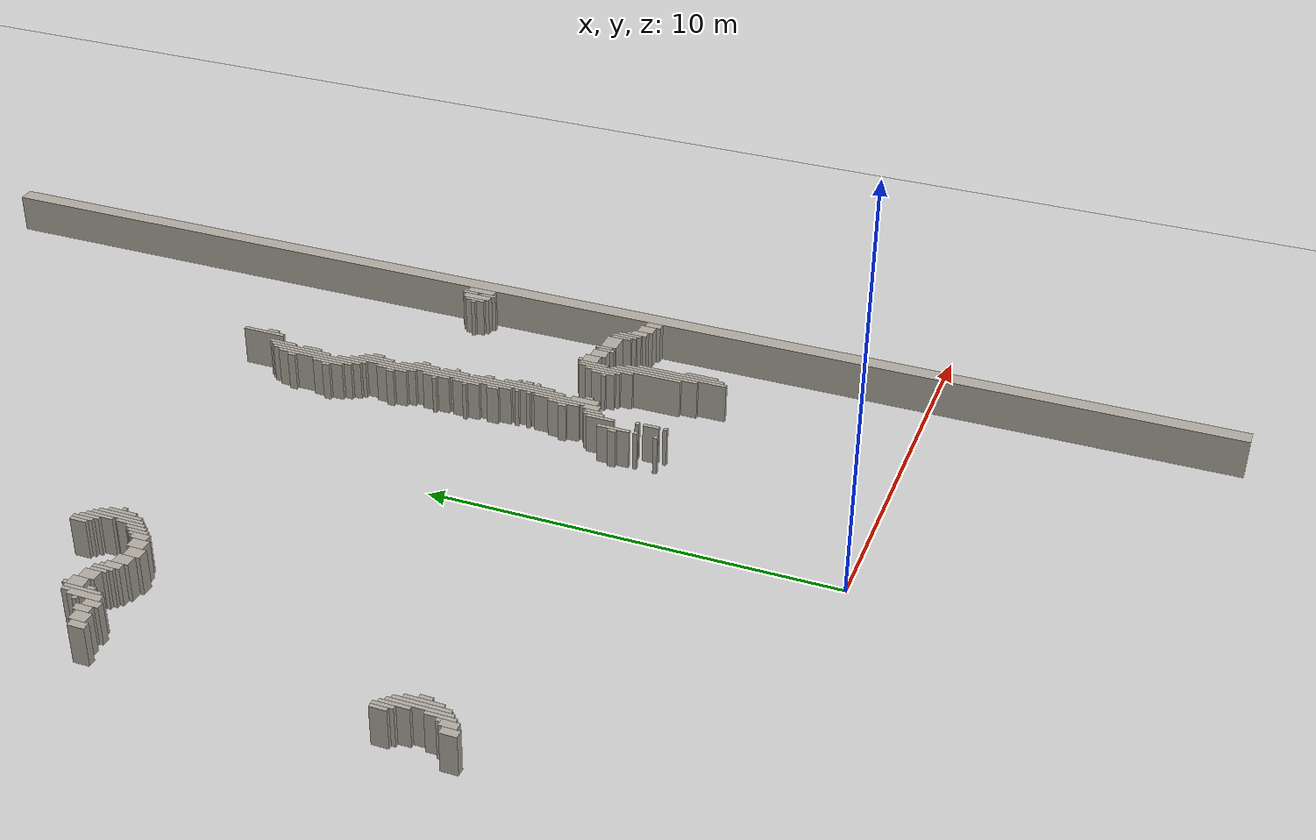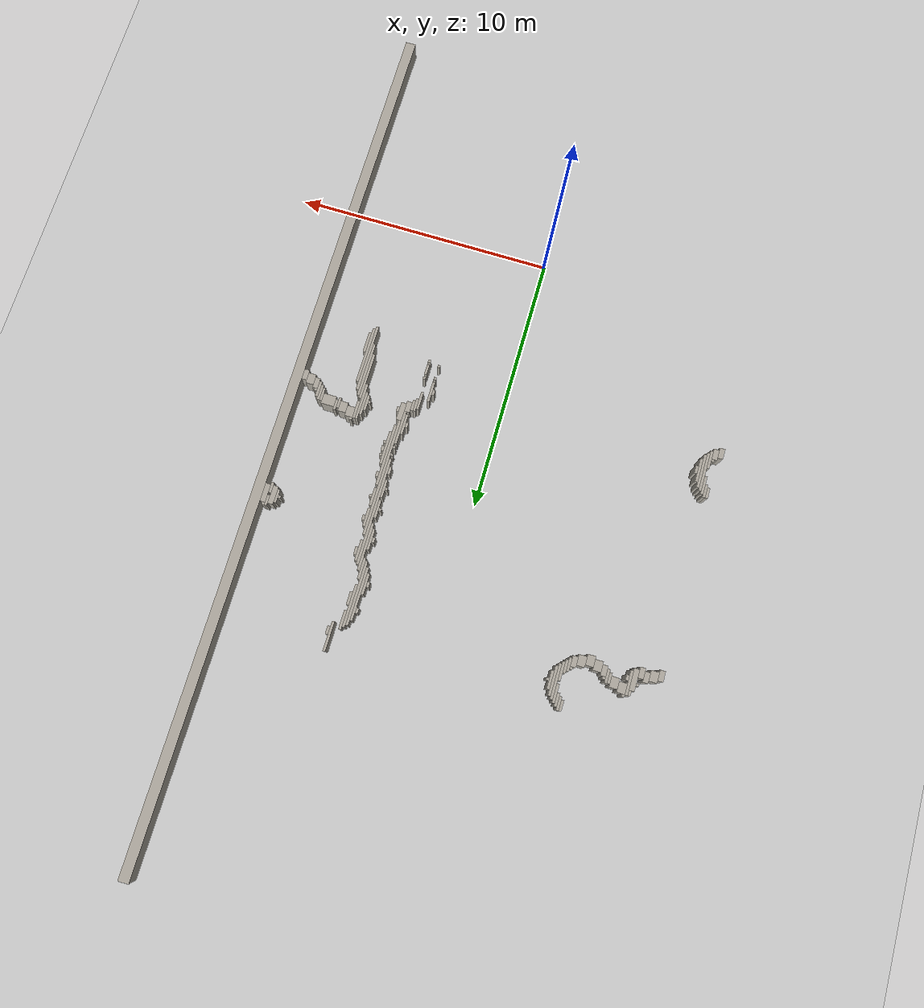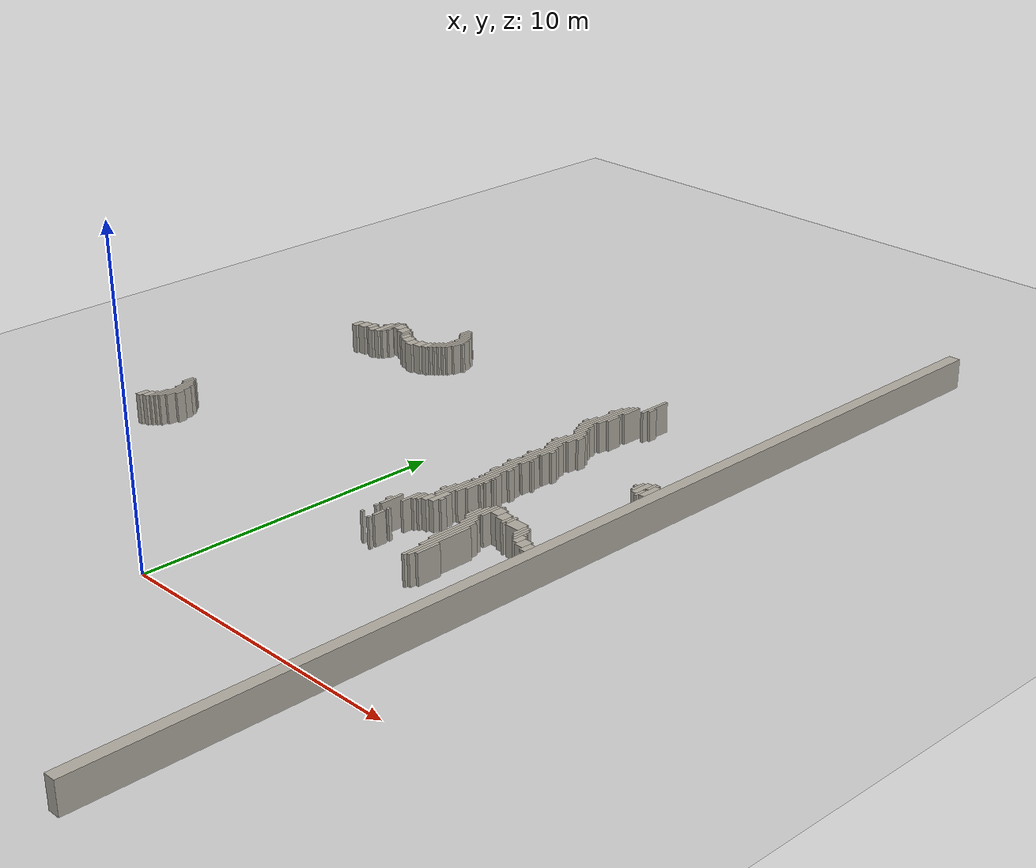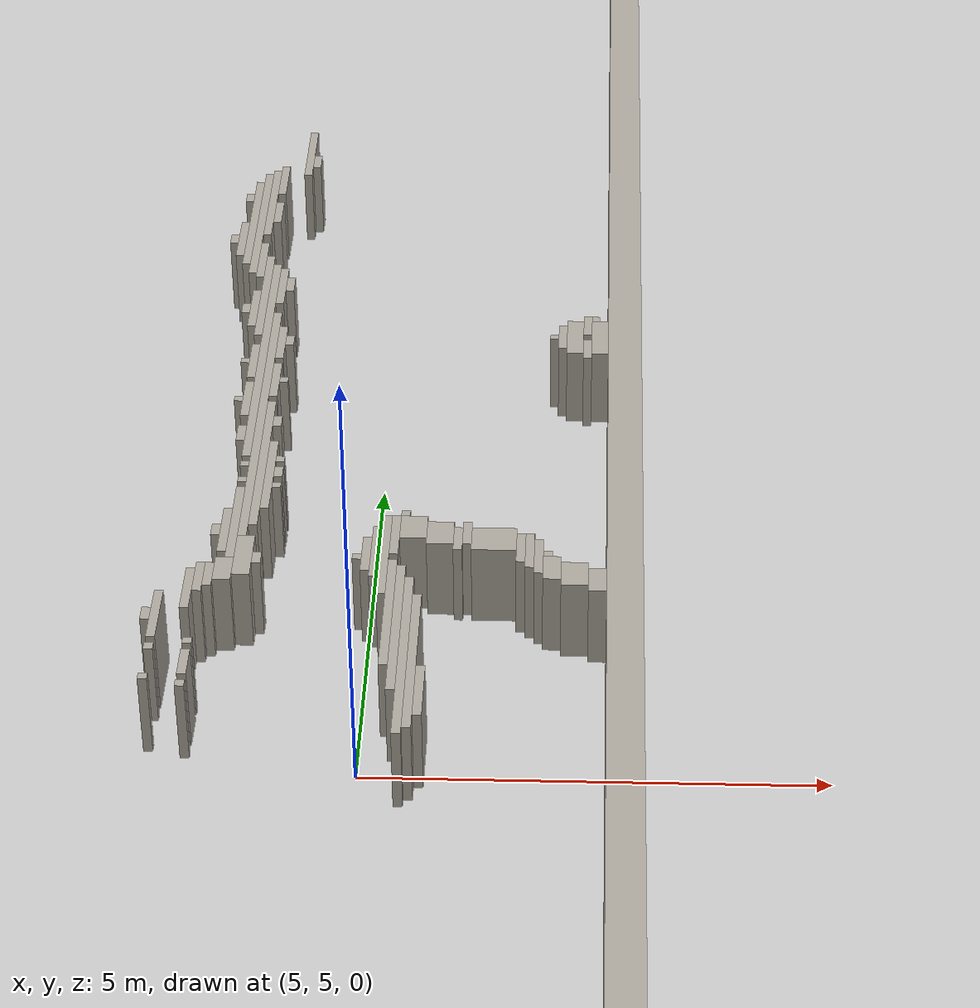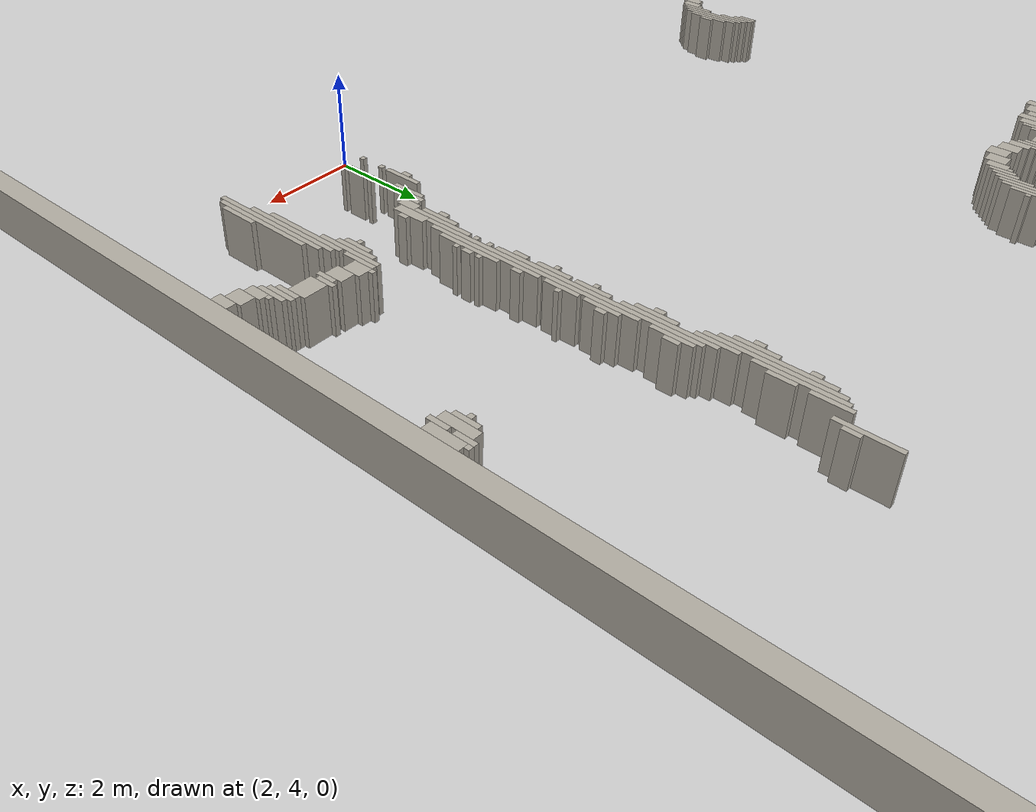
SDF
<sdf version="1.6">
 <world name="willow_office">
  <include><uri>model://sun</uri></include>
  <include><uri>model://ground_plane</uri></include>
  <model name="willow_office_walls">
   <static>true</static>
   <link name="w0011">
    <pose>7.815 9.262 0.500 0 0 0</pose>
    <collision name="c"><geometry><box><size>0.400 33.600 1.000</size></box></geometry></collision>
    <visual name="v">
     <geometry><box><size>0.400 33.600 1.000</size></box></geometry>
     <material><ambient>0.68 0.66 0.62 1</ambient><diffuse>0.68 0.66 0.62 1</diffuse></material>
    </visual>
   </link>
   <link name="w0621">
    <pose>5.465 5.862 0.500 0 0 0</pose>
    <collision name="c"><geometry><box><size>0.100 2.600 1.000</size></box></geometry></collision>
    <visual name="v">
     <geometry><box><size>0.100 2.600 1.000</size></box></geometry>
     <material><ambient>0.68 0.66 0.62 1</ambient><diffuse>0.68 0.66 0.62 1</diffuse></material>
    </visual>
   </link>
   <link name="w0624">
    <pose>5.565 5.762 0.500 0 0 0</pose>
    <collision name="c"><geometry><box><size>0.100 2.200 1.000</size></box></geometry></collision>
    <visual name="v">
     <geometry><box><size>0.100 2.200 1.000</size></box></geometry>
     <material><ambient>0.68 0.66 0.62 1</ambient><diffuse>0.68 0.66 0.62 1</diffuse></material>
    </visual>
   </link>
   <link name="w0630">
    <pose>5.665 5.262 0.500 0 0 0</pose>
    <collision name="c"><geometry><box><size>0.100 0.800 1.000</size></box></geometry></collision>
    <visual name="v">
     <geometry><box><size>0.100 0.800 1.000</size></box></geometry>
     <material><ambient>0.68 0.66 0.62 1</ambient><diffuse>0.68 0.66 0.62 1</diffuse></material>
    </visual>
   </link>
   <link name="w0636">
    <pose>3.165 5.312 0.500 0 0 0</pose>
    <collision name="c"><geometry><box><size>0.100 0.100 1.000</size></box></geometry></collision>
    <visual name="v">
     <geometry><box><size>0.100 0.100 1.000</size></box></geometry>
     <material><ambient>0.68 0.66 0.62 1</ambient><diffuse>0.68 0.66 0.62 1</diffuse></material>
    </visual>
   </link>
   <link name="w0637">
    <pose>5.365 6.312 0.500 0 0 0</pose>
    <collision name="c"><geometry><box><size>0.100 2.100 1.000</size></box></geometry></collision>
    <visual name="v">
     <geometry><box><size>0.100 2.100 1.000</size></box></geometry>
     <material><ambient>0.68 0.66 0.62 1</ambient><diffuse>0.68 0.66 0.62 1</diffuse></material>
    </visual>
   </link>
   <link name="w0639">
    <pose>2.765 5.412 0.500 0 0 0</pose>
    <collision name="c"><geometry><box><size>0.100 0.100 1.000</size></box></geometry></collision>
    <visual name="v">
     <geometry><box><size>0.100 0.100 1.000</size></box></geometry>
     <material><ambient>0.68 0.66 0.62 1</ambient><diffuse>0.68 0.66 0.62 1</diffuse></material>
    </visual>
   </link>
   <link name="w0641">
    <pose>-8.285 5.662 0.500 0 0 0</pose>
    <collision name="c"><geometry><box><size>0.200 0.400 1.000</size></box></geometry></collision>
    <visual name="v">
     <geometry><box><size>0.200 0.400 1.000</size></box></geometry>
     <material><ambient>0.68 0.66 0.62 1</ambient><diffuse>0.68 0.66 0.62 1</diffuse></material>
    </visual>
   </link>
   <link name="w0642">
    <pose>3.165 5.662 0.500 0 0 0</pose>
    <collision name="c"><geometry><box><size>0.100 0.400 1.000</size></box></geometry></collision>
    <visual name="v">
     <geometry><box><size>0.100 0.400 1.000</size></box></geometry>
     <material><ambient>0.68 0.66 0.62 1</ambient><diffuse>0.68 0.66 0.62 1</diffuse></material>
    </visual>
   </link>
   <link name="w0644">
    <pose>-8.085 5.762 0.500 0 0 0</pose>
    <collision name="c"><geometry><box><size>0.200 0.400 1.000</size></box></geometry></collision>
    <visual name="v">
     <geometry><box><size>0.200 0.400 1.000</size></box></geometry>
     <material><ambient>0.68 0.66 0.62 1</ambient><diffuse>0.68 0.66 0.62 1</diffuse></material>
    </visual>
   </link>
   <link name="w0647">
    <pose>-7.935 6.012 0.500 0 0 0</pose>
    <collision name="c"><geometry><box><size>0.100 0.700 1.000</size></box></geometry></collision>
    <visual name="v">
     <geometry><box><size>0.100 0.700 1.000</size></box></geometry>
     <material><ambient>0.68 0.66 0.62 1</ambient><diffuse>0.68 0.66 0.62 1</diffuse></material>
    </visual>
   </link>
   <link name="w0648">
    <pose>5.265 6.562 0.500 0 0 0</pose>
    <collision name="c"><geometry><box><size>0.100 1.800 1.000</size></box></geometry></collision>
    <visual name="v">
     <geometry><box><size>0.100 1.800 1.000</size></box></geometry>
     <material><ambient>0.68 0.66 0.62 1</ambient><diffuse>0.68 0.66 0.62 1</diffuse></material>
    </visual>
   </link>
   <link name="w0651">
    <pose>-7.835 6.512 0.500 0 0 0</pose>
    <collision name="c"><geometry><box><size>0.100 1.500 1.000</size></box></geometry></collision>
    <visual name="v">
     <geometry><box><size>0.100 1.500 1.000</size></box></geometry>
     <material><ambient>0.68 0.66 0.62 1</ambient><diffuse>0.68 0.66 0.62 1</diffuse></material>
    </visual>
   </link>
   <link name="w0652">
    <pose>-7.735 6.512 0.500 0 0 0</pose>
    <collision name="c"><geometry><box><size>0.100 1.300 1.000</size></box></geometry></collision>
    <visual name="v">
     <geometry><box><size>0.100 1.300 1.000</size></box></geometry>
     <material><ambient>0.68 0.66 0.62 1</ambient><diffuse>0.68 0.66 0.62 1</diffuse></material>
    </visual>
   </link>
   <link name="w0653">
    <pose>2.765 5.912 0.500 0 0 0</pose>
    <collision name="c"><geometry><box><size>0.100 0.100 1.000</size></box></geometry></collision>
    <visual name="v">
     <geometry><box><size>0.100 0.100 1.000</size></box></geometry>
     <material><ambient>0.68 0.66 0.62 1</ambient><diffuse>0.68 0.66 0.62 1</diffuse></material>
    </visual>
   </link>
   <link name="w0657">
    <pose>-8.035 6.012 0.500 0 0 0</pose>
    <collision name="c"><geometry><box><size>0.100 0.100 1.000</size></box></geometry></collision>
    <visual name="v">
     <geometry><box><size>0.100 0.100 1.000</size></box></geometry>
     <material><ambient>0.68 0.66 0.62 1</ambient><diffuse>0.68 0.66 0.62 1</diffuse></material>
    </visual>
   </link>
   <link name="w0658">
    <pose>3.165 6.012 0.500 0 0 0</pose>
    <collision name="c"><geometry><box><size>0.100 0.100 1.000</size></box></geometry></collision>
    <visual name="v">
     <geometry><box><size>0.100 0.100 1.000</size></box></geometry>
     <material><ambient>0.68 0.66 0.62 1</ambient><diffuse>0.68 0.66 0.62 1</diffuse></material>
    </visual>
   </link>
   <link name="w0664">
    <pose>-7.635 6.512 0.500 0 0 0</pose>
    <collision name="c"><geometry><box><size>0.100 0.900 1.000</size></box></geometry></collision>
    <visual name="v">
     <geometry><box><size>0.100 0.900 1.000</size></box></geometry>
     <material><ambient>0.68 0.66 0.62 1</ambient><diffuse>0.68 0.66 0.62 1</diffuse></material>
    </visual>
   </link>
   <link name="w0665">
    <pose>2.765 6.462 0.500 0 0 0</pose>
    <collision name="c"><geometry><box><size>0.100 0.800 1.000</size></box></geometry></collision>
    <visual name="v">
     <geometry><box><size>0.100 0.800 1.000</size></box></geometry>
     <material><ambient>0.68 0.66 0.62 1</ambient><diffuse>0.68 0.66 0.62 1</diffuse></material>
    </visual>
   </link>
   <link name="w0675">
    <pose>-7.535 6.512 0.500 0 0 0</pose>
    <collision name="c"><geometry><box><size>0.100 0.300 1.000</size></box></geometry></collision>
    <visual name="v">
     <geometry><box><size>0.100 0.300 1.000</size></box></geometry>
     <material><ambient>0.68 0.66 0.62 1</ambient><diffuse>0.68 0.66 0.62 1</diffuse></material>
    </visual>
   </link>
   <link name="w0676">
    <pose>2.665 6.462 0.500 0 0 0</pose>
    <collision name="c"><geometry><box><size>0.100 0.200 1.000</size></box></geometry></collision>
    <visual name="v">
     <geometry><box><size>0.100 0.200 1.000</size></box></geometry>
     <material><ambient>0.68 0.66 0.62 1</ambient><diffuse>0.68 0.66 0.62 1</diffuse></material>
    </visual>
   </link>
   <link name="w0682">
    <pose>3.065 6.912 0.500 0 0 0</pose>
    <collision name="c"><geometry><box><size>0.100 0.700 1.000</size></box></geometry></collision>
    <visual name="v">
     <geometry><box><size>0.100 0.700 1.000</size></box></geometry>
     <material><ambient>0.68 0.66 0.62 1</ambient><diffuse>0.68 0.66 0.62 1</diffuse></material>
    </visual>
   </link>
   <link name="w0683">
    <pose>-7.935 7.012 0.500 0 0 0</pose>
    <collision name="c"><geometry><box><size>0.100 0.700 1.000</size></box></geometry></collision>
    <visual name="v">
     <geometry><box><size>0.100 0.700 1.000</size></box></geometry>
     <material><ambient>0.68 0.66 0.62 1</ambient><diffuse>0.68 0.66 0.62 1</diffuse></material>
    </visual>
   </link>
   <link name="w0687">
    <pose>3.165 7.112 0.500 0 0 0</pose>
    <collision name="c"><geometry><box><size>0.100 0.500 1.000</size></box></geometry></collision>
    <visual name="v">
     <geometry><box><size>0.100 0.500 1.000</size></box></geometry>
     <material><ambient>0.68 0.66 0.62 1</ambient><diffuse>0.68 0.66 0.62 1</diffuse></material>
    </visual>
   </link>
   <link name="w0688">
    <pose>5.165 7.562 0.500 0 0 0</pose>
    <collision name="c"><geometry><box><size>0.100 1.400 1.000</size></box></geometry></collision>
    <visual name="v">
     <geometry><box><size>0.100 1.400 1.000</size></box></geometry>
     <material><ambient>0.68 0.66 0.62 1</ambient><diffuse>0.68 0.66 0.62 1</diffuse></material>
    </visual>
   </link>
   <link name="w0689">
    <pose>-8.035 7.212 0.500 0 0 0</pose>
    <collision name="c"><geometry><box><size>0.100 0.500 1.000</size></box></geometry></collision>
    <visual name="v">
     <geometry><box><size>0.100 0.500 1.000</size></box></geometry>
     <material><ambient>0.68 0.66 0.62 1</ambient><diffuse>0.68 0.66 0.62 1</diffuse></material>
    </visual>
   </link>
   <link name="w0690">
    <pose>3.265 7.162 0.500 0 0 0</pose>
    <collision name="c"><geometry><box><size>0.100 0.400 1.000</size></box></geometry></collision>
    <visual name="v">
     <geometry><box><size>0.100 0.400 1.000</size></box></geometry>
     <material><ambient>0.68 0.66 0.62 1</ambient><diffuse>0.68 0.66 0.62 1</diffuse></material>
    </visual>
   </link>
   <link name="w0691">
    <pose>7.515 7.162 0.500 0 0 0</pose>
    <collision name="c"><geometry><box><size>0.200 0.400 1.000</size></box></geometry></collision>
    <visual name="v">
     <geometry><box><size>0.200 0.400 1.000</size></box></geometry>
     <material><ambient>0.68 0.66 0.62 1</ambient><diffuse>0.68 0.66 0.62 1</diffuse></material>
    </visual>
   </link>
   <link name="w0695">
    <pose>-8.135 7.262 0.500 0 0 0</pose>
    <collision name="c"><geometry><box><size>0.100 0.400 1.000</size></box></geometry></collision>
    <visual name="v">
     <geometry><box><size>0.100 0.400 1.000</size></box></geometry>
     <material><ambient>0.68 0.66 0.62 1</ambient><diffuse>0.68 0.66 0.62 1</diffuse></material>
    </visual>
   </link>
   <link name="w0696">
    <pose>3.415 7.262 0.500 0 0 0</pose>
    <collision name="c"><geometry><box><size>0.200 0.400 1.000</size></box></geometry></collision>
    <visual name="v">
     <geometry><box><size>0.200 0.400 1.000</size></box></geometry>
     <material><ambient>0.68 0.66 0.62 1</ambient><diffuse>0.68 0.66 0.62 1</diffuse></material>
    </visual>
   </link>
   <link name="w0697">
    <pose>7.265 7.262 0.500 0 0 0</pose>
    <collision name="c"><geometry><box><size>0.300 0.400 1.000</size></box></geometry></collision>
    <visual name="v">
     <geometry><box><size>0.300 0.400 1.000</size></box></geometry>
     <material><ambient>0.68 0.66 0.62 1</ambient><diffuse>0.68 0.66 0.62 1</diffuse></material>
    </visual>
   </link>
   <link name="w0702">
    <pose>3.615 7.512 0.500 0 0 0</pose>
    <collision name="c"><geometry><box><size>0.200 0.700 1.000</size></box></geometry></collision>
    <visual name="v">
     <geometry><box><size>0.200 0.700 1.000</size></box></geometry>
     <material><ambient>0.68 0.66 0.62 1</ambient><diffuse>0.68 0.66 0.62 1</diffuse></material>
    </visual>
   </link>
   <link name="w0703">
    <pose>5.065 7.612 0.500 0 0 0</pose>
    <collision name="c"><geometry><box><size>0.100 0.900 1.000</size></box></geometry></collision>
    <visual name="v">
     <geometry><box><size>0.100 0.900 1.000</size></box></geometry>
     <material><ambient>0.68 0.66 0.62 1</ambient><diffuse>0.68 0.66 0.62 1</diffuse></material>
    </visual>
   </link>
   <link name="w0704">
    <pose>7.015 7.362 0.500 0 0 0</pose>
    <collision name="c"><geometry><box><size>0.200 0.400 1.000</size></box></geometry></collision>
    <visual name="v">
     <geometry><box><size>0.200 0.400 1.000</size></box></geometry>
     <material><ambient>0.68 0.66 0.62 1</ambient><diffuse>0.68 0.66 0.62 1</diffuse></material>
    </visual>
   </link>
   <link name="w0709">
    <pose>4.965 7.562 0.500 0 0 0</pose>
    <collision name="c"><geometry><box><size>0.100 0.600 1.000</size></box></geometry></collision>
    <visual name="v">
     <geometry><box><size>0.100 0.600 1.000</size></box></geometry>
     <material><ambient>0.68 0.66 0.62 1</ambient><diffuse>0.68 0.66 0.62 1</diffuse></material>
    </visual>
   </link>
   <link name="w0710">
    <pose>6.865 7.562 0.500 0 0 0</pose>
    <collision name="c"><geometry><box><size>0.100 0.600 1.000</size></box></geometry></collision>
    <visual name="v">
     <geometry><box><size>0.100 0.600 1.000</size></box></geometry>
     <material><ambient>0.68 0.66 0.62 1</ambient><diffuse>0.68 0.66 0.62 1</diffuse></material>
    </visual>
   </link>
   <link name="w0715">
    <pose>3.765 7.462 0.500 0 0 0</pose>
    <collision name="c"><geometry><box><size>0.100 0.200 1.000</size></box></geometry></collision>
    <visual name="v">
     <geometry><box><size>0.100 0.200 1.000</size></box></geometry>
     <material><ambient>0.68 0.66 0.62 1</ambient><diffuse>0.68 0.66 0.62 1</diffuse></material>
    </visual>
   </link>
   <link name="w0716">
    <pose>6.765 7.662 0.500 0 0 0</pose>
    <collision name="c"><geometry><box><size>0.100 0.600 1.000</size></box></geometry></collision>
    <visual name="v">
     <geometry><box><size>0.100 0.600 1.000</size></box></geometry>
     <material><ambient>0.68 0.66 0.62 1</ambient><diffuse>0.68 0.66 0.62 1</diffuse></material>
    </visual>
   </link>
   <link name="w0717">
    <pose>3.465 8.112 0.500 0 0 0</pose>
    <collision name="c"><geometry><box><size>0.100 1.300 1.000</size></box></geometry></collision>
    <visual name="v">
     <geometry><box><size>0.100 1.300 1.000</size></box></geometry>
     <material><ambient>0.68 0.66 0.62 1</ambient><diffuse>0.68 0.66 0.62 1</diffuse></material>
    </visual>
   </link>
   <link name="w0718">
    <pose>4.865 7.512 0.500 0 0 0</pose>
    <collision name="c"><geometry><box><size>0.100 0.100 1.000</size></box></geometry></collision>
    <visual name="v">
     <geometry><box><size>0.100 0.100 1.000</size></box></geometry>
     <material><ambient>0.68 0.66 0.62 1</ambient><diffuse>0.68 0.66 0.62 1</diffuse></material>
    </visual>
   </link>
   <link name="w0719">
    <pose>6.665 7.712 0.500 0 0 0</pose>
    <collision name="c"><geometry><box><size>0.100 0.500 1.000</size></box></geometry></collision>
    <visual name="v">
     <geometry><box><size>0.100 0.500 1.000</size></box></geometry>
     <material><ambient>0.68 0.66 0.62 1</ambient><diffuse>0.68 0.66 0.62 1</diffuse></material>
    </visual>
   </link>
   <link name="w0722">
    <pose>3.365 7.962 0.500 0 0 0</pose>
    <collision name="c"><geometry><box><size>0.100 0.800 1.000</size></box></geometry></collision>
    <visual name="v">
     <geometry><box><size>0.100 0.800 1.000</size></box></geometry>
     <material><ambient>0.68 0.66 0.62 1</ambient><diffuse>0.68 0.66 0.62 1</diffuse></material>
    </visual>
   </link>
   <link name="w0723">
    <pose>5.265 7.912 0.500 0 0 0</pose>
    <collision name="c"><geometry><box><size>0.100 0.700 1.000</size></box></geometry></collision>
    <visual name="v">
     <geometry><box><size>0.100 0.700 1.000</size></box></geometry>
     <material><ambient>0.68 0.66 0.62 1</ambient><diffuse>0.68 0.66 0.62 1</diffuse></material>
    </visual>
   </link>
   <link name="w0724">
    <pose>6.965 7.612 0.500 0 0 0</pose>
    <collision name="c"><geometry><box><size>0.100 0.100 1.000</size></box></geometry></collision>
    <visual name="v">
     <geometry><box><size>0.100 0.100 1.000</size></box></geometry>
     <material><ambient>0.68 0.66 0.62 1</ambient><diffuse>0.68 0.66 0.62 1</diffuse></material>
    </visual>
   </link>
   <link name="w0726">
    <pose>5.965 7.862 0.500 0 0 0</pose>
    <collision name="c"><geometry><box><size>0.100 0.400 1.000</size></box></geometry></collision>
    <visual name="v">
     <geometry><box><size>0.100 0.400 1.000</size></box></geometry>
     <material><ambient>0.68 0.66 0.62 1</ambient><diffuse>0.68 0.66 0.62 1</diffuse></material>
    </visual>
   </link>
   <link name="w0727">
    <pose>6.365 7.862 0.500 0 0 0</pose>
    <collision name="c"><geometry><box><size>0.500 0.400 1.000</size></box></geometry></collision>
    <visual name="v">
     <geometry><box><size>0.500 0.400 1.000</size></box></geometry>
     <material><ambient>0.68 0.66 0.62 1</ambient><diffuse>0.68 0.66 0.62 1</diffuse></material>
    </visual>
   </link>
   <link name="w0729">
    <pose>5.765 7.962 0.500 0 0 0</pose>
    <collision name="c"><geometry><box><size>0.300 0.400 1.000</size></box></geometry></collision>
    <visual name="v">
     <geometry><box><size>0.300 0.400 1.000</size></box></geometry>
     <material><ambient>0.68 0.66 0.62 1</ambient><diffuse>0.68 0.66 0.62 1</diffuse></material>
    </visual>
   </link>
   <link name="w0730">
    <pose>6.065 7.962 0.500 0 0 0</pose>
    <collision name="c"><geometry><box><size>0.100 0.400 1.000</size></box></geometry></collision>
    <visual name="v">
     <geometry><box><size>0.100 0.400 1.000</size></box></geometry>
     <material><ambient>0.68 0.66 0.62 1</ambient><diffuse>0.68 0.66 0.62 1</diffuse></material>
    </visual>
   </link>
   <link name="w0734">
    <pose>3.265 7.962 0.500 0 0 0</pose>
    <collision name="c"><geometry><box><size>0.100 0.200 1.000</size></box></geometry></collision>
    <visual name="v">
     <geometry><box><size>0.100 0.200 1.000</size></box></geometry>
     <material><ambient>0.68 0.66 0.62 1</ambient><diffuse>0.68 0.66 0.62 1</diffuse></material>
    </visual>
   </link>
   <link name="w0735">
    <pose>3.565 10.112 0.500 0 0 0</pose>
    <collision name="c"><geometry><box><size>0.100 4.500 1.000</size></box></geometry></collision>
    <visual name="v">
     <geometry><box><size>0.100 4.500 1.000</size></box></geometry>
     <material><ambient>0.68 0.66 0.62 1</ambient><diffuse>0.68 0.66 0.62 1</diffuse></material>
    </visual>
   </link>
   <link name="w0736">
    <pose>5.465 8.062 0.500 0 0 0</pose>
    <collision name="c"><geometry><box><size>0.300 0.400 1.000</size></box></geometry></collision>
    <visual name="v">
     <geometry><box><size>0.300 0.400 1.000</size></box></geometry>
     <material><ambient>0.68 0.66 0.62 1</ambient><diffuse>0.68 0.66 0.62 1</diffuse></material>
    </visual>
   </link>
   <link name="w0742">
    <pose>3.665 9.262 0.500 0 0 0</pose>
    <collision name="c"><geometry><box><size>0.100 2.400 1.000</size></box></geometry></collision>
    <visual name="v">
     <geometry><box><size>0.100 2.400 1.000</size></box></geometry>
     <material><ambient>0.68 0.66 0.62 1</ambient><diffuse>0.68 0.66 0.62 1</diffuse></material>
    </visual>
   </link>
   <link name="w0747">
    <pose>5.365 8.312 0.500 0 0 0</pose>
    <collision name="c"><geometry><box><size>0.100 0.100 1.000</size></box></geometry></collision>
    <visual name="v">
     <geometry><box><size>0.100 0.100 1.000</size></box></geometry>
     <material><ambient>0.68 0.66 0.62 1</ambient><diffuse>0.68 0.66 0.62 1</diffuse></material>
    </visual>
   </link>
   <link name="w0750">
    <pose>3.765 9.012 0.500 0 0 0</pose>
    <collision name="c"><geometry><box><size>0.100 1.300 1.000</size></box></geometry></collision>
    <visual name="v">
     <geometry><box><size>0.100 1.300 1.000</size></box></geometry>
     <material><ambient>0.68 0.66 0.62 1</ambient><diffuse>0.68 0.66 0.62 1</diffuse></material>
    </visual>
   </link>
   <link name="w0760">
    <pose>3.865 8.812 0.500 0 0 0</pose>
    <collision name="c"><geometry><box><size>0.100 0.100 1.000</size></box></geometry></collision>
    <visual name="v">
     <geometry><box><size>0.100 0.100 1.000</size></box></geometry>
     <material><ambient>0.68 0.66 0.62 1</ambient><diffuse>0.68 0.66 0.62 1</diffuse></material>
    </visual>
   </link>
   <link name="w0762">
    <pose>3.465 8.912 0.500 0 0 0</pose>
    <collision name="c"><geometry><box><size>0.100 0.100 1.000</size></box></geometry></collision>
    <visual name="v">
     <geometry><box><size>0.100 0.100 1.000</size></box></geometry>
     <material><ambient>0.68 0.66 0.62 1</ambient><diffuse>0.68 0.66 0.62 1</diffuse></material>
    </visual>
   </link>
   <link name="w0766">
    <pose>3.865 9.062 0.500 0 0 0</pose>
    <collision name="c"><geometry><box><size>0.100 0.200 1.000</size></box></geometry></collision>
    <visual name="v">
     <geometry><box><size>0.100 0.200 1.000</size></box></geometry>
     <material><ambient>0.68 0.66 0.62 1</ambient><diffuse>0.68 0.66 0.62 1</diffuse></material>
    </visual>
   </link>
   <link name="w0770">
    <pose>3.465 9.212 0.500 0 0 0</pose>
    <collision name="c"><geometry><box><size>0.100 0.100 1.000</size></box></geometry></collision>
    <visual name="v">
     <geometry><box><size>0.100 0.100 1.000</size></box></geometry>
     <material><ambient>0.68 0.66 0.62 1</ambient><diffuse>0.68 0.66 0.62 1</diffuse></material>
    </visual>
   </link>
   <link name="w0772">
    <pose>3.865 9.312 0.500 0 0 0</pose>
    <collision name="c"><geometry><box><size>0.100 0.100 1.000</size></box></geometry></collision>
    <visual name="v">
     <geometry><box><size>0.100 0.100 1.000</size></box></geometry>
     <material><ambient>0.68 0.66 0.62 1</ambient><diffuse>0.68 0.66 0.62 1</diffuse></material>
    </visual>
   </link>
   <link name="w0776">
    <pose>3.465 11.412 0.500 0 0 0</pose>
    <collision name="c"><geometry><box><size>0.100 4.100 1.000</size></box></geometry></collision>
    <visual name="v">
     <geometry><box><size>0.100 4.100 1.000</size></box></geometry>
     <material><ambient>0.68 0.66 0.62 1</ambient><diffuse>0.68 0.66 0.62 1</diffuse></material>
    </visual>
   </link>
   <link name="w0784">
    <pose>3.365 9.812 0.500 0 0 0</pose>
    <collision name="c"><geometry><box><size>0.100 0.300 1.000</size></box></geometry></collision>
    <visual name="v">
     <geometry><box><size>0.100 0.300 1.000</size></box></geometry>
     <material><ambient>0.68 0.66 0.62 1</ambient><diffuse>0.68 0.66 0.62 1</diffuse></material>
    </visual>
   </link>
   <link name="w0790">
    <pose>3.765 10.062 0.500 0 0 0</pose>
    <collision name="c"><geometry><box><size>0.100 0.200 1.000</size></box></geometry></collision>
    <visual name="v">
     <geometry><box><size>0.100 0.200 1.000</size></box></geometry>
     <material><ambient>0.68 0.66 0.62 1</ambient><diffuse>0.68 0.66 0.62 1</diffuse></material>
    </visual>
   </link>
   <link name="w0794">
    <pose>3.365 10.512 0.500 0 0 0</pose>
    <collision name="c"><geometry><box><size>0.100 0.700 1.000</size></box></geometry></collision>
    <visual name="v">
     <geometry><box><size>0.100 0.700 1.000</size></box></geometry>
     <material><ambient>0.68 0.66 0.62 1</ambient><diffuse>0.68 0.66 0.62 1</diffuse></material>
    </visual>
   </link>
   <link name="w0802">
    <pose>3.265 10.512 0.500 0 0 0</pose>
    <collision name="c"><geometry><box><size>0.100 0.100 1.000</size></box></geometry></collision>
    <visual name="v">
     <geometry><box><size>0.100 0.100 1.000</size></box></geometry>
     <material><ambient>0.68 0.66 0.62 1</ambient><diffuse>0.68 0.66 0.62 1</diffuse></material>
    </visual>
   </link>
   <link name="w0803">
    <pose>3.665 10.912 0.500 0 0 0</pose>
    <collision name="c"><geometry><box><size>0.100 0.700 1.000</size></box></geometry></collision>
    <visual name="v">
     <geometry><box><size>0.100 0.700 1.000</size></box></geometry>
     <material><ambient>0.68 0.66 0.62 1</ambient><diffuse>0.68 0.66 0.62 1</diffuse></material>
    </visual>
   </link>
   <link name="w0811">
    <pose>3.765 10.912 0.500 0 0 0</pose>
    <collision name="c"><geometry><box><size>0.100 0.100 1.000</size></box></geometry></collision>
    <visual name="v">
     <geometry><box><size>0.100 0.100 1.000</size></box></geometry>
     <material><ambient>0.68 0.66 0.62 1</ambient><diffuse>0.68 0.66 0.62 1</diffuse></material>
    </visual>
   </link>
   <link name="w0816">
    <pose>3.365 11.312 0.500 0 0 0</pose>
    <collision name="c"><geometry><box><size>0.100 0.700 1.000</size></box></geometry></collision>
    <visual name="v">
     <geometry><box><size>0.100 0.700 1.000</size></box></geometry>
     <material><ambient>0.68 0.66 0.62 1</ambient><diffuse>0.68 0.66 0.62 1</diffuse></material>
    </visual>
   </link>
   <link name="w0826">
    <pose>3.265 11.312 0.500 0 0 0</pose>
    <collision name="c"><geometry><box><size>0.100 0.100 1.000</size></box></geometry></collision>
    <visual name="v">
     <geometry><box><size>0.100 0.100 1.000</size></box></geometry>
     <material><ambient>0.68 0.66 0.62 1</ambient><diffuse>0.68 0.66 0.62 1</diffuse></material>
    </visual>
   </link>
   <link name="w0827">
    <pose>3.665 11.712 0.500 0 0 0</pose>
    <collision name="c"><geometry><box><size>0.100 0.700 1.000</size></box></geometry></collision>
    <visual name="v">
     <geometry><box><size>0.100 0.700 1.000</size></box></geometry>
     <material><ambient>0.68 0.66 0.62 1</ambient><diffuse>0.68 0.66 0.62 1</diffuse></material>
    </visual>
   </link>
   <link name="w0830">
    <pose>7.365 11.662 0.500 0 0 0</pose>
    <collision name="c"><geometry><box><size>0.100 0.400 1.000</size></box></geometry></collision>
    <visual name="v">
     <geometry><box><size>0.100 0.400 1.000</size></box></geometry>
     <material><ambient>0.68 0.66 0.62 1</ambient><diffuse>0.68 0.66 0.62 1</diffuse></material>
    </visual>
   </link>
   <link name="w0834">
    <pose>7.215 11.912 0.500 0 0 0</pose>
    <collision name="c"><geometry><box><size>0.200 0.700 1.000</size></box></geometry></collision>
    <visual name="v">
     <geometry><box><size>0.200 0.700 1.000</size></box></geometry>
     <material><ambient>0.68 0.66 0.62 1</ambient><diffuse>0.68 0.66 0.62 1</diffuse></material>
    </visual>
   </link>
   <link name="w0835">
    <pose>7.515 11.912 0.500 0 0 0</pose>
    <collision name="c"><geometry><box><size>0.200 0.700 1.000</size></box></geometry></collision>
    <visual name="v">
     <geometry><box><size>0.200 0.700 1.000</size></box></geometry>
     <material><ambient>0.68 0.66 0.62 1</ambient><diffuse>0.68 0.66 0.62 1</diffuse></material>
    </visual>
   </link>
   <link name="w0836">
    <pose>3.765 11.762 0.500 0 0 0</pose>
    <collision name="c"><geometry><box><size>0.100 0.200 1.000</size></box></geometry></collision>
    <visual name="v">
     <geometry><box><size>0.100 0.200 1.000</size></box></geometry>
     <material><ambient>0.68 0.66 0.62 1</ambient><diffuse>0.68 0.66 0.62 1</diffuse></material>
    </visual>
   </link>
   <link name="w0837">
    <pose>7.065 11.912 0.500 0 0 0</pose>
    <collision name="c"><geometry><box><size>0.100 0.500 1.000</size></box></geometry></collision>
    <visual name="v">
     <geometry><box><size>0.100 0.500 1.000</size></box></geometry>
     <material><ambient>0.68 0.66 0.62 1</ambient><diffuse>0.68 0.66 0.62 1</diffuse></material>
    </visual>
   </link>
   <link name="w0840">
    <pose>3.365 12.762 0.500 0 0 0</pose>
    <collision name="c"><geometry><box><size>0.100 1.800 1.000</size></box></geometry></collision>
    <visual name="v">
     <geometry><box><size>0.100 1.800 1.000</size></box></geometry>
     <material><ambient>0.68 0.66 0.62 1</ambient><diffuse>0.68 0.66 0.62 1</diffuse></material>
    </visual>
   </link>
   <link name="w0841">
    <pose>6.965 11.912 0.500 0 0 0</pose>
    <collision name="c"><geometry><box><size>0.100 0.100 1.000</size></box></geometry></collision>
    <visual name="v">
     <geometry><box><size>0.100 0.100 1.000</size></box></geometry>
     <material><ambient>0.68 0.66 0.62 1</ambient><diffuse>0.68 0.66 0.62 1</diffuse></material>
    </visual>
   </link>
   <link name="w0844">
    <pose>7.365 12.162 0.500 0 0 0</pose>
    <collision name="c"><geometry><box><size>0.100 0.400 1.000</size></box></geometry></collision>
    <visual name="v">
     <geometry><box><size>0.100 0.400 1.000</size></box></geometry>
     <material><ambient>0.68 0.66 0.62 1</ambient><diffuse>0.68 0.66 0.62 1</diffuse></material>
    </visual>
   </link>
   <link name="w0848">
    <pose>3.265 12.462 0.500 0 0 0</pose>
    <collision name="c"><geometry><box><size>0.100 0.800 1.000</size></box></geometry></collision>
    <visual name="v">
     <geometry><box><size>0.100 0.800 1.000</size></box></geometry>
     <material><ambient>0.68 0.66 0.62 1</ambient><diffuse>0.68 0.66 0.62 1</diffuse></material>
    </visual>
   </link>
   <link name="w0850">
    <pose>7.465 12.312 0.500 0 0 0</pose>
    <collision name="c"><geometry><box><size>0.100 0.100 1.000</size></box></geometry></collision>
    <visual name="v">
     <geometry><box><size>0.100 0.100 1.000</size></box></geometry>
     <material><ambient>0.68 0.66 0.62 1</ambient><diffuse>0.68 0.66 0.62 1</diffuse></material>
    </visual>
   </link>
   <link name="w0852">
    <pose>3.165 12.462 0.500 0 0 0</pose>
    <collision name="c"><geometry><box><size>0.100 0.200 1.000</size></box></geometry></collision>
    <visual name="v">
     <geometry><box><size>0.100 0.200 1.000</size></box></geometry>
     <material><ambient>0.68 0.66 0.62 1</ambient><diffuse>0.68 0.66 0.62 1</diffuse></material>
    </visual>
   </link>
   <link name="w0856">
    <pose>3.565 12.962 0.500 0 0 0</pose>
    <collision name="c"><geometry><box><size>0.100 0.800 1.000</size></box></geometry></collision>
    <visual name="v">
     <geometry><box><size>0.100 0.800 1.000</size></box></geometry>
     <material><ambient>0.68 0.66 0.62 1</ambient><diffuse>0.68 0.66 0.62 1</diffuse></material>
    </visual>
   </link>
   <link name="w0861">
    <pose>3.665 13.012 0.500 0 0 0</pose>
    <collision name="c"><geometry><box><size>0.100 0.300 1.000</size></box></geometry></collision>
    <visual name="v">
     <geometry><box><size>0.100 0.300 1.000</size></box></geometry>
     <material><ambient>0.68 0.66 0.62 1</ambient><diffuse>0.68 0.66 0.62 1</diffuse></material>
    </visual>
   </link>
   <link name="w0865">
    <pose>3.265 13.562 0.500 0 0 0</pose>
    <collision name="c"><geometry><box><size>0.100 0.800 1.000</size></box></geometry></collision>
    <visual name="v">
     <geometry><box><size>0.100 0.800 1.000</size></box></geometry>
     <material><ambient>0.68 0.66 0.62 1</ambient><diffuse>0.68 0.66 0.62 1</diffuse></material>
    </visual>
   </link>
   <link name="w0869">
    <pose>3.165 14.462 0.500 0 0 0</pose>
    <collision name="c"><geometry><box><size>0.100 2.400 1.000</size></box></geometry></collision>
    <visual name="v">
     <geometry><box><size>0.100 2.400 1.000</size></box></geometry>
     <material><ambient>0.68 0.66 0.62 1</ambient><diffuse>0.68 0.66 0.62 1</diffuse></material>
    </visual>
   </link>
   <link name="w0874">
    <pose>3.065 14.462 0.500 0 0 0</pose>
    <collision name="c"><geometry><box><size>0.100 2.000 1.000</size></box></geometry></collision>
    <visual name="v">
     <geometry><box><size>0.100 2.000 1.000</size></box></geometry>
     <material><ambient>0.68 0.66 0.62 1</ambient><diffuse>0.68 0.66 0.62 1</diffuse></material>
    </visual>
   </link>
   <link name="w0878">
    <pose>2.965 14.062 0.500 0 0 0</pose>
    <collision name="c"><geometry><box><size>0.100 0.800 1.000</size></box></geometry></collision>
    <visual name="v">
     <geometry><box><size>0.100 0.800 1.000</size></box></geometry>
     <material><ambient>0.68 0.66 0.62 1</ambient><diffuse>0.68 0.66 0.62 1</diffuse></material>
    </visual>
   </link>
   <link name="w0883">
    <pose>-8.085 14.162 0.500 0 0 0</pose>
    <collision name="c"><geometry><box><size>0.200 0.400 1.000</size></box></geometry></collision>
    <visual name="v">
     <geometry><box><size>0.200 0.400 1.000</size></box></geometry>
     <material><ambient>0.68 0.66 0.62 1</ambient><diffuse>0.68 0.66 0.62 1</diffuse></material>
    </visual>
   </link>
   <link name="w0884">
    <pose>2.865 14.062 0.500 0 0 0</pose>
    <collision name="c"><geometry><box><size>0.100 0.200 1.000</size></box></geometry></collision>
    <visual name="v">
     <geometry><box><size>0.100 0.200 1.000</size></box></geometry>
     <material><ambient>0.68 0.66 0.62 1</ambient><diffuse>0.68 0.66 0.62 1</diffuse></material>
    </visual>
   </link>
   <link name="w0889">
    <pose>-7.835 14.262 0.500 0 0 0</pose>
    <collision name="c"><geometry><box><size>0.300 0.400 1.000</size></box></geometry></collision>
    <visual name="v">
     <geometry><box><size>0.300 0.400 1.000</size></box></geometry>
     <material><ambient>0.68 0.66 0.62 1</ambient><diffuse>0.68 0.66 0.62 1</diffuse></material>
    </visual>
   </link>
   <link name="w0890">
    <pose>-7.385 14.262 0.500 0 0 0</pose>
    <collision name="c"><geometry><box><size>0.200 0.400 1.000</size></box></geometry></collision>
    <visual name="v">
     <geometry><box><size>0.200 0.400 1.000</size></box></geometry>
     <material><ambient>0.68 0.66 0.62 1</ambient><diffuse>0.68 0.66 0.62 1</diffuse></material>
    </visual>
   </link>
   <link name="w0895">
    <pose>-7.585 14.362 0.500 0 0 0</pose>
    <collision name="c"><geometry><box><size>0.200 0.400 1.000</size></box></geometry></collision>
    <visual name="v">
     <geometry><box><size>0.200 0.400 1.000</size></box></geometry>
     <material><ambient>0.68 0.66 0.62 1</ambient><diffuse>0.68 0.66 0.62 1</diffuse></material>
    </visual>
   </link>
   <link name="w0896">
    <pose>-7.185 14.562 0.500 0 0 0</pose>
    <collision name="c"><geometry><box><size>0.200 0.800 1.000</size></box></geometry></collision>
    <visual name="v">
     <geometry><box><size>0.200 0.800 1.000</size></box></geometry>
     <material><ambient>0.68 0.66 0.62 1</ambient><diffuse>0.68 0.66 0.62 1</diffuse></material>
    </visual>
   </link>
   <link name="w0897">
    <pose>-5.535 14.362 0.500 0 0 0</pose>
    <collision name="c"><geometry><box><size>0.300 0.400 1.000</size></box></geometry></collision>
    <visual name="v">
     <geometry><box><size>0.300 0.400 1.000</size></box></geometry>
     <material><ambient>0.68 0.66 0.62 1</ambient><diffuse>0.68 0.66 0.62 1</diffuse></material>
    </visual>
   </link>
   <link name="w0898">
    <pose>3.265 14.962 0.500 0 0 0</pose>
    <collision name="c"><geometry><box><size>0.100 1.600 1.000</size></box></geometry></collision>
    <visual name="v">
     <geometry><box><size>0.100 1.600 1.000</size></box></geometry>
     <material><ambient>0.68 0.66 0.62 1</ambient><diffuse>0.68 0.66 0.62 1</diffuse></material>
    </visual>
   </link>
   <link name="w0902">
    <pose>-7.035 14.712 0.500 0 0 0</pose>
    <collision name="c"><geometry><box><size>0.100 0.900 1.000</size></box></geometry></collision>
    <visual name="v">
     <geometry><box><size>0.100 0.900 1.000</size></box></geometry>
     <material><ambient>0.68 0.66 0.62 1</ambient><diffuse>0.68 0.66 0.62 1</diffuse></material>
    </visual>
   </link>
   <link name="w0903">
    <pose>-5.835 14.462 0.500 0 0 0</pose>
    <collision name="c"><geometry><box><size>0.300 0.400 1.000</size></box></geometry></collision>
    <visual name="v">
     <geometry><box><size>0.300 0.400 1.000</size></box></geometry>
     <material><ambient>0.68 0.66 0.62 1</ambient><diffuse>0.68 0.66 0.62 1</diffuse></material>
    </visual>
   </link>
   <link name="w0904">
    <pose>-5.235 14.462 0.500 0 0 0</pose>
    <collision name="c"><geometry><box><size>0.300 0.400 1.000</size></box></geometry></collision>
    <visual name="v">
     <geometry><box><size>0.300 0.400 1.000</size></box></geometry>
     <material><ambient>0.68 0.66 0.62 1</ambient><diffuse>0.68 0.66 0.62 1</diffuse></material>
    </visual>
   </link>
   <link name="w0909">
    <pose>-6.085 14.562 0.500 0 0 0</pose>
    <collision name="c"><geometry><box><size>0.200 0.400 1.000</size></box></geometry></collision>
    <visual name="v">
     <geometry><box><size>0.200 0.400 1.000</size></box></geometry>
     <material><ambient>0.68 0.66 0.62 1</ambient><diffuse>0.68 0.66 0.62 1</diffuse></material>
    </visual>
   </link>
   <link name="w0910">
    <pose>-4.985 14.562 0.500 0 0 0</pose>
    <collision name="c"><geometry><box><size>0.200 0.400 1.000</size></box></geometry></collision>
    <visual name="v">
     <geometry><box><size>0.200 0.400 1.000</size></box></geometry>
     <material><ambient>0.68 0.66 0.62 1</ambient><diffuse>0.68 0.66 0.62 1</diffuse></material>
    </visual>
   </link>
   <link name="w0914">
    <pose>-6.935 14.562 0.500 0 0 0</pose>
    <collision name="c"><geometry><box><size>0.100 0.200 1.000</size></box></geometry></collision>
    <visual name="v">
     <geometry><box><size>0.100 0.200 1.000</size></box></geometry>
     <material><ambient>0.68 0.66 0.62 1</ambient><diffuse>0.68 0.66 0.62 1</diffuse></material>
    </visual>
   </link>
   <link name="w0915">
    <pose>-6.235 14.712 0.500 0 0 0</pose>
    <collision name="c"><geometry><box><size>0.100 0.500 1.000</size></box></geometry></collision>
    <visual name="v">
     <geometry><box><size>0.100 0.500 1.000</size></box></geometry>
     <material><ambient>0.68 0.66 0.62 1</ambient><diffuse>0.68 0.66 0.62 1</diffuse></material>
    </visual>
   </link>
   <link name="w0916">
    <pose>-4.835 14.712 0.500 0 0 0</pose>
    <collision name="c"><geometry><box><size>0.100 0.500 1.000</size></box></geometry></collision>
    <visual name="v">
     <geometry><box><size>0.100 0.500 1.000</size></box></geometry>
     <material><ambient>0.68 0.66 0.62 1</ambient><diffuse>0.68 0.66 0.62 1</diffuse></material>
    </visual>
   </link>
   <link name="w0917">
    <pose>3.365 14.712 0.500 0 0 0</pose>
    <collision name="c"><geometry><box><size>0.100 0.500 1.000</size></box></geometry></collision>
    <visual name="v">
     <geometry><box><size>0.100 0.500 1.000</size></box></geometry>
     <material><ambient>0.68 0.66 0.62 1</ambient><diffuse>0.68 0.66 0.62 1</diffuse></material>
    </visual>
   </link>
   <link name="w0919">
    <pose>-6.335 14.762 0.500 0 0 0</pose>
    <collision name="c"><geometry><box><size>0.100 0.400 1.000</size></box></geometry></collision>
    <visual name="v">
     <geometry><box><size>0.100 0.400 1.000</size></box></geometry>
     <material><ambient>0.68 0.66 0.62 1</ambient><diffuse>0.68 0.66 0.62 1</diffuse></material>
    </visual>
   </link>
   <link name="w0920">
    <pose>-4.735 14.812 0.500 0 0 0</pose>
    <collision name="c"><geometry><box><size>0.100 0.500 1.000</size></box></geometry></collision>
    <visual name="v">
     <geometry><box><size>0.100 0.500 1.000</size></box></geometry>
     <material><ambient>0.68 0.66 0.62 1</ambient><diffuse>0.68 0.66 0.62 1</diffuse></material>
    </visual>
   </link>
   <link name="w0923">
    <pose>-7.335 14.712 0.500 0 0 0</pose>
    <collision name="c"><geometry><box><size>0.100 0.100 1.000</size></box></geometry></collision>
    <visual name="v">
     <geometry><box><size>0.100 0.100 1.000</size></box></geometry>
     <material><ambient>0.68 0.66 0.62 1</ambient><diffuse>0.68 0.66 0.62 1</diffuse></material>
    </visual>
   </link>
   <link name="w0924">
    <pose>-6.535 14.862 0.500 0 0 0</pose>
    <collision name="c"><geometry><box><size>0.300 0.400 1.000</size></box></geometry></collision>
    <visual name="v">
     <geometry><box><size>0.300 0.400 1.000</size></box></geometry>
     <material><ambient>0.68 0.66 0.62 1</ambient><diffuse>0.68 0.66 0.62 1</diffuse></material>
    </visual>
   </link>
   <link name="w0925">
    <pose>-4.635 15.012 0.500 0 0 0</pose>
    <collision name="c"><geometry><box><size>0.100 0.700 1.000</size></box></geometry></collision>
    <visual name="v">
     <geometry><box><size>0.100 0.700 1.000</size></box></geometry>
     <material><ambient>0.68 0.66 0.62 1</ambient><diffuse>0.68 0.66 0.62 1</diffuse></material>
    </visual>
   </link>
   <link name="w0928">
    <pose>-6.835 14.962 0.500 0 0 0</pose>
    <collision name="c"><geometry><box><size>0.300 0.400 1.000</size></box></geometry></collision>
    <visual name="v">
     <geometry><box><size>0.300 0.400 1.000</size></box></geometry>
     <material><ambient>0.68 0.66 0.62 1</ambient><diffuse>0.68 0.66 0.62 1</diffuse></material>
    </visual>
   </link>
   <link name="w0929">
    <pose>-6.135 14.812 0.500 0 0 0</pose>
    <collision name="c"><geometry><box><size>0.100 0.100 1.000</size></box></geometry></collision>
    <visual name="v">
     <geometry><box><size>0.100 0.100 1.000</size></box></geometry>
     <material><ambient>0.68 0.66 0.62 1</ambient><diffuse>0.68 0.66 0.62 1</diffuse></material>
    </visual>
   </link>
   <link name="w0930">
    <pose>-4.935 14.812 0.500 0 0 0</pose>
    <collision name="c"><geometry><box><size>0.100 0.100 1.000</size></box></geometry></collision>
    <visual name="v">
     <geometry><box><size>0.100 0.100 1.000</size></box></geometry>
     <material><ambient>0.68 0.66 0.62 1</ambient><diffuse>0.68 0.66 0.62 1</diffuse></material>
    </visual>
   </link>
   <link name="w0931">
    <pose>-4.535 15.412 0.500 0 0 0</pose>
    <collision name="c"><geometry><box><size>0.100 1.300 1.000</size></box></geometry></collision>
    <visual name="v">
     <geometry><box><size>0.100 1.300 1.000</size></box></geometry>
     <material><ambient>0.68 0.66 0.62 1</ambient><diffuse>0.68 0.66 0.62 1</diffuse></material>
    </visual>
   </link>
   <link name="w0932">
    <pose>-4.435 15.412 0.500 0 0 0</pose>
    <collision name="c"><geometry><box><size>0.100 1.100 1.000</size></box></geometry></collision>
    <visual name="v">
     <geometry><box><size>0.100 1.100 1.000</size></box></geometry>
     <material><ambient>0.68 0.66 0.62 1</ambient><diffuse>0.68 0.66 0.62 1</diffuse></material>
    </visual>
   </link>
   <link name="w0936">
    <pose>-7.135 15.062 0.500 0 0 0</pose>
    <collision name="c"><geometry><box><size>0.100 0.200 1.000</size></box></geometry></collision>
    <visual name="v">
     <geometry><box><size>0.100 0.200 1.000</size></box></geometry>
     <material><ambient>0.68 0.66 0.62 1</ambient><diffuse>0.68 0.66 0.62 1</diffuse></material>
    </visual>
   </link>
   <link name="w0937">
    <pose>2.965 15.062 0.500 0 0 0</pose>
    <collision name="c"><geometry><box><size>0.100 0.200 1.000</size></box></geometry></collision>
    <visual name="v">
     <geometry><box><size>0.100 0.200 1.000</size></box></geometry>
     <material><ambient>0.68 0.66 0.62 1</ambient><diffuse>0.68 0.66 0.62 1</diffuse></material>
    </visual>
   </link>
   <link name="w0939">
    <pose>-4.335 15.412 0.500 0 0 0</pose>
    <collision name="c"><geometry><box><size>0.100 0.700 1.000</size></box></geometry></collision>
    <visual name="v">
     <geometry><box><size>0.100 0.700 1.000</size></box></geometry>
     <material><ambient>0.68 0.66 0.62 1</ambient><diffuse>0.68 0.66 0.62 1</diffuse></material>
    </visual>
   </link>
   <link name="w0941">
    <pose>-6.935 15.212 0.500 0 0 0</pose>
    <collision name="c"><geometry><box><size>0.100 0.100 1.000</size></box></geometry></collision>
    <visual name="v">
     <geometry><box><size>0.100 0.100 1.000</size></box></geometry>
     <material><ambient>0.68 0.66 0.62 1</ambient><diffuse>0.68 0.66 0.62 1</diffuse></material>
    </visual>
   </link>
   <link name="w0942">
    <pose>3.365 15.512 0.500 0 0 0</pose>
    <collision name="c"><geometry><box><size>0.100 0.700 1.000</size></box></geometry></collision>
    <visual name="v">
     <geometry><box><size>0.100 0.700 1.000</size></box></geometry>
     <material><ambient>0.68 0.66 0.62 1</ambient><diffuse>0.68 0.66 0.62 1</diffuse></material>
    </visual>
   </link>
   <link name="w0947">
    <pose>-4.235 15.412 0.500 0 0 0</pose>
    <collision name="c"><geometry><box><size>0.100 0.100 1.000</size></box></geometry></collision>
    <visual name="v">
     <geometry><box><size>0.100 0.100 1.000</size></box></geometry>
     <material><ambient>0.68 0.66 0.62 1</ambient><diffuse>0.68 0.66 0.62 1</diffuse></material>
    </visual>
   </link>
   <link name="w0950">
    <pose>-4.635 15.812 0.500 0 0 0</pose>
    <collision name="c"><geometry><box><size>0.100 0.700 1.000</size></box></geometry></collision>
    <visual name="v">
     <geometry><box><size>0.100 0.700 1.000</size></box></geometry>
     <material><ambient>0.68 0.66 0.62 1</ambient><diffuse>0.68 0.66 0.62 1</diffuse></material>
    </visual>
   </link>
   <link name="w0958">
    <pose>3.665 16.212 0.500 0 0 0</pose>
    <collision name="c"><geometry><box><size>0.100 1.100 1.000</size></box></geometry></collision>
    <visual name="v">
     <geometry><box><size>0.100 1.100 1.000</size></box></geometry>
     <material><ambient>0.68 0.66 0.62 1</ambient><diffuse>0.68 0.66 0.62 1</diffuse></material>
    </visual>
   </link>
   <link name="w0962">
    <pose>-4.735 16.012 0.500 0 0 0</pose>
    <collision name="c"><geometry><box><size>0.100 0.500 1.000</size></box></geometry></collision>
    <visual name="v">
     <geometry><box><size>0.100 0.500 1.000</size></box></geometry>
     <material><ambient>0.68 0.66 0.62 1</ambient><diffuse>0.68 0.66 0.62 1</diffuse></material>
    </visual>
   </link>
   <link name="w0966">
    <pose>-4.835 16.112 0.500 0 0 0</pose>
    <collision name="c"><geometry><box><size>0.100 0.500 1.000</size></box></geometry></collision>
    <visual name="v">
     <geometry><box><size>0.100 0.500 1.000</size></box></geometry>
     <material><ambient>0.68 0.66 0.62 1</ambient><diffuse>0.68 0.66 0.62 1</diffuse></material>
    </visual>
   </link>
   <link name="w0967">
    <pose>3.765 16.012 0.500 0 0 0</pose>
    <collision name="c"><geometry><box><size>0.100 0.300 1.000</size></box></geometry></collision>
    <visual name="v">
     <geometry><box><size>0.100 0.300 1.000</size></box></geometry>
     <material><ambient>0.68 0.66 0.62 1</ambient><diffuse>0.68 0.66 0.62 1</diffuse></material>
    </visual>
   </link>
   <link name="w0969">
    <pose>-4.935 16.162 0.500 0 0 0</pose>
    <collision name="c"><geometry><box><size>0.100 0.400 1.000</size></box></geometry></collision>
    <visual name="v">
     <geometry><box><size>0.100 0.400 1.000</size></box></geometry>
     <material><ambient>0.68 0.66 0.62 1</ambient><diffuse>0.68 0.66 0.62 1</diffuse></material>
    </visual>
   </link>
  </model>
 </world>
</sdf>
